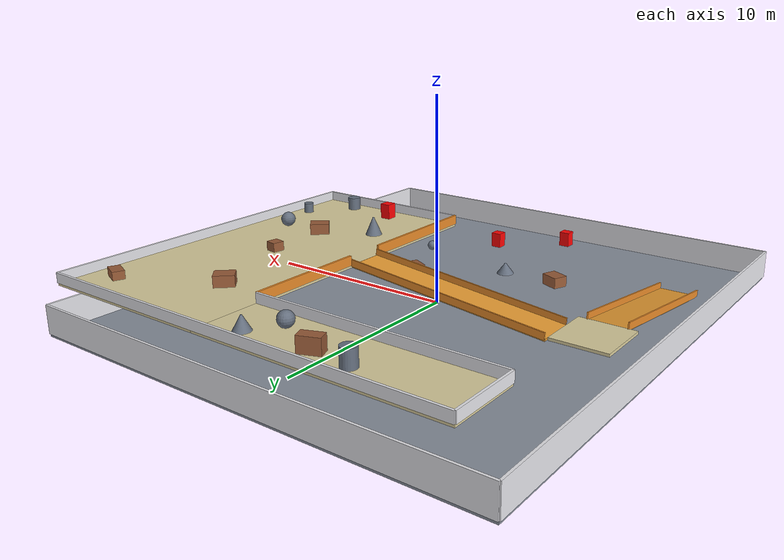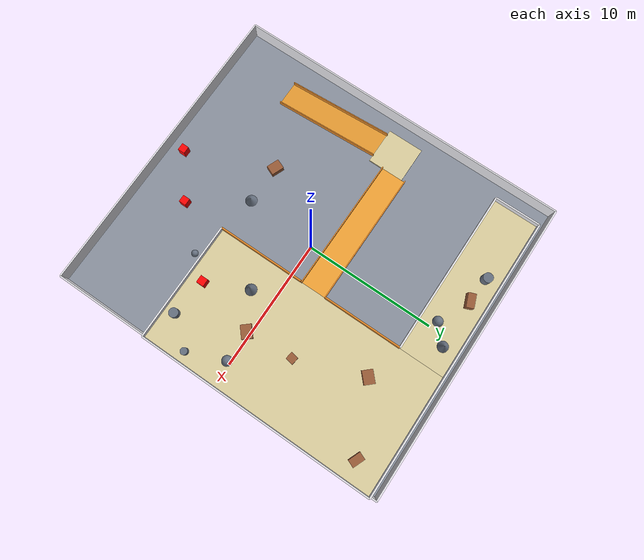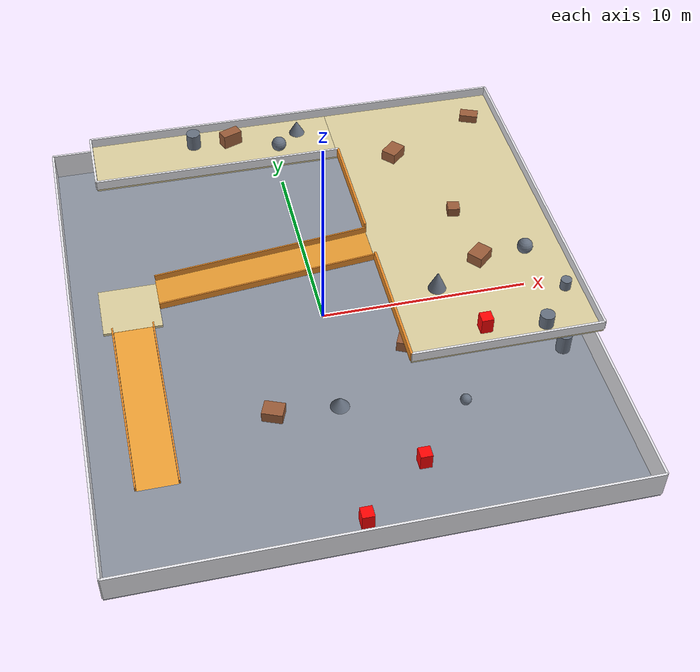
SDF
<sdf version="1.7">
 <world name="floor_3">
  <model name="floor_3_structure">
   <static>true</static>
   <link name="structure">
    <collision name="lower_collision">
     <pose>0 0 -0.0684210526 0 0 0</pose>
     <geometry><box><size>23.2631579 26 0.136842105</size></box></geometry>
     <max_contacts>40</max_contacts>
     <surface>
      <friction><ode><mu>2</mu><mu2>2</mu2></ode></friction>
      <contact><ode><kp>1e7</kp><kd>1000</kd><max_vel>0.1</max_vel><min_depth>0.001</min_depth></ode></contact>
     </surface>
    </collision>
    <visual name="lower_visual">
     <pose>0 0 -0.0684210526 0 0 0</pose>
     <geometry><box><size>23.2631579 26 0.136842105</size></box></geometry>
     <material><ambient>0.54 0.57 0.62 1</ambient><diffuse>0.54 0.57 0.62 1</diffuse></material>
    </visual>
    <collision name="landing_collision">
     <pose>-8.89473684 1.36842105 1.02631579 0 0 0</pose>
     <geometry><box><size>2.73684211 2.73684211 0.136842105</size></box></geometry>
     <max_contacts>40</max_contacts>
     <surface>
      <friction><ode><mu>2</mu><mu2>2</mu2></ode></friction>
      <contact><ode><kp>1e7</kp><kd>1000</kd><max_vel>0.1</max_vel><min_depth>0.001</min_depth></ode></contact>
     </surface>
    </collision>
    <visual name="landing_visual">
     <pose>-8.89473684 1.36842105 1.02631579 0 0 0</pose>
     <geometry><box><size>2.73684211 2.73684211 0.136842105</size></box></geometry>
     <material><ambient>0.86 0.81 0.62 1</ambient><diffuse>0.86 0.81 0.62 1</diffuse></material>
    </visual>
    <collision name="east_upper_collision">
     <pose>7.18421053 3.42105263 2.12105263 0 0 0</pose>
     <geometry><box><size>8.89473684 17.7894737 0.136842105</size></box></geometry>
     <max_contacts>40</max_contacts>
     <surface>
      <friction><ode><mu>2</mu><mu2>2</mu2></ode></friction>
      <contact><ode><kp>1e7</kp><kd>1000</kd><max_vel>0.1</max_vel><min_depth>0.001</min_depth></ode></contact>
     </surface>
    </collision>
    <visual name="east_upper_visual">
     <pose>7.18421053 3.42105263 2.12105263 0 0 0</pose>
     <geometry><box><size>8.89473684 17.7894737 0.136842105</size></box></geometry>
     <material><ambient>0.86 0.81 0.62 1</ambient><diffuse>0.86 0.81 0.62 1</diffuse></material>
    </visual>
    <collision name="north_upper_collision">
     <pose>-3.42105263 10.6052632 2.12105263 0 0 0</pose>
     <geometry><box><size>12.3157895 3.42105263 0.136842105</size></box></geometry>
     <max_contacts>40</max_contacts>
     <surface>
      <friction><ode><mu>2</mu><mu2>2</mu2></ode></friction>
      <contact><ode><kp>1e7</kp><kd>1000</kd><max_vel>0.1</max_vel><min_depth>0.001</min_depth></ode></contact>
     </surface>
    </collision>
    <visual name="north_upper_visual">
     <pose>-3.42105263 10.6052632 2.12105263 0 0 0</pose>
     <geometry><box><size>12.3157895 3.42105263 0.136842105</size></box></geometry>
     <material><ambient>0.86 0.81 0.62 1</ambient><diffuse>0.86 0.81 0.62 1</diffuse></material>
    </visual>
    <collision name="first_ramp_collision">
     <pose>-8.89473684 -4.08005258 0.486325235 0 -0.132007906 1.57079633</pose>
     <geometry><box><size>8.31709891 1.8 0.123157895</size></box></geometry>
     <max_contacts>40</max_contacts>
     <surface>
      <friction><ode><mu>2</mu><mu2>2</mu2></ode></friction>
      <contact><ode><kp>1e7</kp><kd>1000</kd><max_vel>0.1</max_vel><min_depth>0.001</min_depth></ode></contact>
     </surface>
    </collision>
    <visual name="first_ramp_visual">
     <pose>-8.89473684 -4.08005258 0.486325235 0 -0.132007906 1.57079633</pose>
     <geometry><box><size>8.31709891 1.8 0.123157895</size></box></geometry>
     <material><ambient>0.92 0.62 0.20 1</ambient><diffuse>0.92 0.62 0.20 1</diffuse></material>
    </visual>
    <collision name="first_ramp_rail_-1_collision">
     <pose>-7.95368421 -4.08005258 0.677904182 0 -0.132007906 1.57079633</pose>
     <geometry><box><size>8.31709891 0.0684210526 0.342105263</size></box></geometry>
     <max_contacts>40</max_contacts>
     <surface>
      <friction><ode><mu>2</mu><mu2>2</mu2></ode></friction>
      <contact><ode><kp>1e7</kp><kd>1000</kd><max_vel>0.1</max_vel><min_depth>0.001</min_depth></ode></contact>
     </surface>
    </collision>
    <visual name="first_ramp_rail_-1_visual">
     <pose>-7.95368421 -4.08005258 0.677904182 0 -0.132007906 1.57079633</pose>
     <geometry><box><size>8.31709891 0.0684210526 0.342105263</size></box></geometry>
     <material><ambient>0.92 0.55 0.16 1</ambient><diffuse>0.92 0.55 0.16 1</diffuse></material>
    </visual>
    <collision name="first_ramp_rail_1_collision">
     <pose>-9.83578947 -4.08005258 0.677904182 0 -0.132007906 1.57079633</pose>
     <geometry><box><size>8.31709891 0.0684210526 0.342105263</size></box></geometry>
     <max_contacts>40</max_contacts>
     <surface>
      <friction><ode><mu>2</mu><mu2>2</mu2></ode></friction>
      <contact><ode><kp>1e7</kp><kd>1000</kd><max_vel>0.1</max_vel><min_depth>0.001</min_depth></ode></contact>
     </surface>
    </collision>
    <visual name="first_ramp_rail_1_visual">
     <pose>-9.83578947 -4.08005258 0.677904182 0 -0.132007906 1.57079633</pose>
     <geometry><box><size>8.31709891 0.0684210526 0.342105263</size></box></geometry>
     <material><ambient>0.92 0.55 0.16 1</ambient><diffuse>0.92 0.55 0.16 1</diffuse></material>
    </visual>
    <collision name="second_ramp_collision">
     <pose>-2.37112167 2.05263158 1.58087139 0 -0.105914462 0</pose>
     <geometry><box><size>10.3553969 1.8 0.123157895</size></box></geometry>
     <max_contacts>40</max_contacts>
     <surface>
      <friction><ode><mu>2</mu><mu2>2</mu2></ode></friction>
      <contact><ode><kp>1e7</kp><kd>1000</kd><max_vel>0.1</max_vel><min_depth>0.001</min_depth></ode></contact>
     </surface>
    </collision>
    <visual name="second_ramp_visual">
     <pose>-2.37112167 2.05263158 1.58087139 0 -0.105914462 0</pose>
     <geometry><box><size>10.3553969 1.8 0.123157895</size></box></geometry>
     <material><ambient>0.92 0.62 0.20 1</ambient><diffuse>0.92 0.62 0.20 1</diffuse></material>
    </visual>
    <collision name="second_ramp_rail_-1_collision">
     <pose>-2.37112167 1.11157895 1.77245033 0 -0.105914462 0</pose>
     <geometry><box><size>10.3553969 0.0684210526 0.342105263</size></box></geometry>
     <max_contacts>40</max_contacts>
     <surface>
      <friction><ode><mu>2</mu><mu2>2</mu2></ode></friction>
      <contact><ode><kp>1e7</kp><kd>1000</kd><max_vel>0.1</max_vel><min_depth>0.001</min_depth></ode></contact>
     </surface>
    </collision>
    <visual name="second_ramp_rail_-1_visual">
     <pose>-2.37112167 1.11157895 1.77245033 0 -0.105914462 0</pose>
     <geometry><box><size>10.3553969 0.0684210526 0.342105263</size></box></geometry>
     <material><ambient>0.92 0.55 0.16 1</ambient><diffuse>0.92 0.55 0.16 1</diffuse></material>
    </visual>
    <collision name="second_ramp_rail_1_collision">
     <pose>-2.37112167 2.99368421 1.77245033 0 -0.105914462 0</pose>
     <geometry><box><size>10.3553969 0.0684210526 0.342105263</size></box></geometry>
     <max_contacts>40</max_contacts>
     <surface>
      <friction><ode><mu>2</mu><mu2>2</mu2></ode></friction>
      <contact><ode><kp>1e7</kp><kd>1000</kd><max_vel>0.1</max_vel><min_depth>0.001</min_depth></ode></contact>
     </surface>
    </collision>
    <visual name="second_ramp_rail_1_visual">
     <pose>-2.37112167 2.99368421 1.77245033 0 -0.105914462 0</pose>
     <geometry><box><size>10.3553969 0.0684210526 0.342105263</size></box></geometry>
     <material><ambient>0.92 0.55 0.16 1</ambient><diffuse>0.92 0.55 0.16 1</diffuse></material>
    </visual>
    <collision name="gallery_display_0_collision">
     <pose>-3.42105263 -5.47368421 0.273684211 0 0 -0.389327825</pose>
     <geometry><box><size>0.957894737 0.752631579 0.547368421</size></box></geometry>
     <max_contacts>40</max_contacts>
     <surface>
      <friction><ode><mu>2</mu><mu2>2</mu2></ode></friction>
      <contact><ode><kp>1e7</kp><kd>1000</kd><max_vel>0.1</max_vel><min_depth>0.001</min_depth></ode></contact>
     </surface>
    </collision>
    <visual name="gallery_display_0_visual">
     <pose>-3.42105263 -5.47368421 0.273684211 0 0 -0.389327825</pose>
     <geometry><box><size>0.957894737 0.752631579 0.547368421</size></box></geometry>
     <material><ambient>0.60 0.36 0.22 1</ambient><diffuse>0.60 0.36 0.22 1</diffuse></material>
    </visual>
    <collision name="gallery_display_1_collision">
     <pose>3.42105263 -2.73684211 0.273684211 0 0 -0.444158905</pose>
     <geometry><box><size>0.957894737 0.752631579 0.547368421</size></box></geometry>
     <max_contacts>40</max_contacts>
     <surface>
      <friction><ode><mu>2</mu><mu2>2</mu2></ode></friction>
      <contact><ode><kp>1e7</kp><kd>1000</kd><max_vel>0.1</max_vel><min_depth>0.001</min_depth></ode></contact>
     </surface>
    </collision>
    <visual name="gallery_display_1_visual">
     <pose>3.42105263 -2.73684211 0.273684211 0 0 -0.444158905</pose>
     <geometry><box><size>0.957894737 0.752631579 0.547368421</size></box></geometry>
     <material><ambient>0.60 0.36 0.22 1</ambient><diffuse>0.60 0.36 0.22 1</diffuse></material>
    </visual>
    <collision name="gallery_display_2_collision">
     <pose>7.52631579 0 2.46315789 0 0 0.714391628</pose>
     <geometry><box><size>0.957894737 0.752631579 0.547368421</size></box></geometry>
     <max_contacts>40</max_contacts>
     <surface>
      <friction><ode><mu>2</mu><mu2>2</mu2></ode></friction>
      <contact><ode><kp>1e7</kp><kd>1000</kd><max_vel>0.1</max_vel><min_depth>0.001</min_depth></ode></contact>
     </surface>
    </collision>
    <visual name="gallery_display_2_visual">
     <pose>7.52631579 0 2.46315789 0 0 0.714391628</pose>
     <geometry><box><size>0.957894737 0.752631579 0.547368421</size></box></geometry>
     <material><ambient>0.60 0.36 0.22 1</ambient><diffuse>0.60 0.36 0.22 1</diffuse></material>
    </visual>
    <collision name="gallery_display_3_collision">
     <pose>5.47368421 8.21052632 2.46315789 0 0 0.749595299</pose>
     <geometry><box><size>0.957894737 0.752631579 0.547368421</size></box></geometry>
     <max_contacts>40</max_contacts>
     <surface>
      <friction><ode><mu>2</mu><mu2>2</mu2></ode></friction>
      <contact><ode><kp>1e7</kp><kd>1000</kd><max_vel>0.1</max_vel><min_depth>0.001</min_depth></ode></contact>
     </surface>
    </collision>
    <visual name="gallery_display_3_visual">
     <pose>5.47368421 8.21052632 2.46315789 0 0 0.749595299</pose>
     <geometry><box><size>0.957894737 0.752631579 0.547368421</size></box></geometry>
     <material><ambient>0.60 0.36 0.22 1</ambient><diffuse>0.60 0.36 0.22 1</diffuse></material>
    </visual>
    <collision name="gallery_rail_0_collision">
     <pose>7.18421053 -5.47368421 2.42894737 0 0 0</pose>
     <geometry><box><size>8.89473684 0.109473684 0.478947368</size></box></geometry>
     <max_contacts>40</max_contacts>
     <surface>
      <friction><ode><mu>2</mu><mu2>2</mu2></ode></friction>
      <contact><ode><kp>1e7</kp><kd>1000</kd><max_vel>0.1</max_vel><min_depth>0.001</min_depth></ode></contact>
     </surface>
    </collision>
    <visual name="gallery_rail_0_visual">
     <pose>7.18421053 -5.47368421 2.42894737 0 0 0</pose>
     <geometry><box><size>8.89473684 0.109473684 0.478947368</size></box></geometry>
     <material><ambient>0.91 0.91 0.93 1</ambient><diffuse>0.91 0.91 0.93 1</diffuse></material>
    </visual>
    <collision name="gallery_rail_1_collision">
     <pose>11.6315789 3.42105263 2.42894737 0 0 1.57079633</pose>
     <geometry><box><size>17.7894737 0.109473684 0.478947368</size></box></geometry>
     <max_contacts>40</max_contacts>
     <surface>
      <friction><ode><mu>2</mu><mu2>2</mu2></ode></friction>
      <contact><ode><kp>1e7</kp><kd>1000</kd><max_vel>0.1</max_vel><min_depth>0.001</min_depth></ode></contact>
     </surface>
    </collision>
    <visual name="gallery_rail_1_visual">
     <pose>11.6315789 3.42105263 2.42894737 0 0 1.57079633</pose>
     <geometry><box><size>17.7894737 0.109473684 0.478947368</size></box></geometry>
     <material><ambient>0.91 0.91 0.93 1</ambient><diffuse>0.91 0.91 0.93 1</diffuse></material>
    </visual>
    <collision name="gallery_rail_2_collision">
     <pose>1.02631579 12.3157895 2.42894737 0 0 3.14159265</pose>
     <geometry><box><size>21.2105263 0.109473684 0.478947368</size></box></geometry>
     <max_contacts>40</max_contacts>
     <surface>
      <friction><ode><mu>2</mu><mu2>2</mu2></ode></friction>
      <contact><ode><kp>1e7</kp><kd>1000</kd><max_vel>0.1</max_vel><min_depth>0.001</min_depth></ode></contact>
     </surface>
    </collision>
    <visual name="gallery_rail_2_visual">
     <pose>1.02631579 12.3157895 2.42894737 0 0 3.14159265</pose>
     <geometry><box><size>21.2105263 0.109473684 0.478947368</size></box></geometry>
     <material><ambient>0.91 0.91 0.93 1</ambient><diffuse>0.91 0.91 0.93 1</diffuse></material>
    </visual>
    <collision name="gallery_rail_3_collision">
     <pose>-9.57894737 10.6052632 2.42894737 0 0 -1.57079633</pose>
     <geometry><box><size>3.42105263 0.109473684 0.478947368</size></box></geometry>
     <max_contacts>40</max_contacts>
     <surface>
      <friction><ode><mu>2</mu><mu2>2</mu2></ode></friction>
      <contact><ode><kp>1e7</kp><kd>1000</kd><max_vel>0.1</max_vel><min_depth>0.001</min_depth></ode></contact>
     </surface>
    </collision>
    <visual name="gallery_rail_3_visual">
     <pose>-9.57894737 10.6052632 2.42894737 0 0 -1.57079633</pose>
     <geometry><box><size>3.42105263 0.109473684 0.478947368</size></box></geometry>
     <material><ambient>0.91 0.91 0.93 1</ambient><diffuse>0.91 0.91 0.93 1</diffuse></material>
    </visual>
    <collision name="gallery_rail_4_collision">
     <pose>-3.42105263 8.89473684 2.42894737 0 0 0</pose>
     <geometry><box><size>12.3157895 0.109473684 0.478947368</size></box></geometry>
     <max_contacts>40</max_contacts>
     <surface>
      <friction><ode><mu>2</mu><mu2>2</mu2></ode></friction>
      <contact><ode><kp>1e7</kp><kd>1000</kd><max_vel>0.1</max_vel><min_depth>0.001</min_depth></ode></contact>
     </surface>
    </collision>
    <visual name="gallery_rail_4_visual">
     <pose>-3.42105263 8.89473684 2.42894737 0 0 0</pose>
     <geometry><box><size>12.3157895 0.109473684 0.478947368</size></box></geometry>
     <material><ambient>0.91 0.91 0.93 1</ambient><diffuse>0.91 0.91 0.93 1</diffuse></material>
    </visual>
    <collision name="gallery_west_lower_collision">
     <pose>2.73684211 -2.20657895 2.42894737 0 0 0</pose>
     <geometry><box><size>0.109473684 6.53421053 0.478947368</size></box></geometry>
     <max_contacts>40</max_contacts>
     <surface>
      <friction><ode><mu>2</mu><mu2>2</mu2></ode></friction>
      <contact><ode><kp>1e7</kp><kd>1000</kd><max_vel>0.1</max_vel><min_depth>0.001</min_depth></ode></contact>
     </surface>
    </collision>
    <visual name="gallery_west_lower_visual">
     <pose>2.73684211 -2.20657895 2.42894737 0 0 0</pose>
     <geometry><box><size>0.109473684 6.53421053 0.478947368</size></box></geometry>
     <material><ambient>0.92 0.55 0.16 1</ambient><diffuse>0.92 0.55 0.16 1</diffuse></material>
    </visual>
    <collision name="gallery_west_upper_collision">
     <pose>2.73684211 5.96973684 2.42894737 0 0 0</pose>
     <geometry><box><size>0.109473684 5.85 0.478947368</size></box></geometry>
     <max_contacts>40</max_contacts>
     <surface>
      <friction><ode><mu>2</mu><mu2>2</mu2></ode></friction>
      <contact><ode><kp>1e7</kp><kd>1000</kd><max_vel>0.1</max_vel><min_depth>0.001</min_depth></ode></contact>
     </surface>
    </collision>
    <visual name="gallery_west_upper_visual">
     <pose>2.73684211 5.96973684 2.42894737 0 0 0</pose>
     <geometry><box><size>0.109473684 5.85 0.478947368</size></box></geometry>
     <material><ambient>0.92 0.55 0.16 1</ambient><diffuse>0.92 0.55 0.16 1</diffuse></material>
    </visual>
    <collision name="boundary_0_collision">
     <pose>0 -13 0.684210526 0 0 0</pose>
     <geometry><box><size>23.2631579 0.109473684 1.36842105</size></box></geometry>
     <max_contacts>40</max_contacts>
     <surface>
      <friction><ode><mu>2</mu><mu2>2</mu2></ode></friction>
      <contact><ode><kp>1e7</kp><kd>1000</kd><max_vel>0.1</max_vel><min_depth>0.001</min_depth></ode></contact>
     </surface>
    </collision>
    <visual name="boundary_0_visual">
     <pose>0 -13 0.684210526 0 0 0</pose>
     <geometry><box><size>23.2631579 0.109473684 1.36842105</size></box></geometry>
     <material><ambient>0.91 0.91 0.93 1</ambient><diffuse>0.91 0.91 0.93 1</diffuse></material>
    </visual>
    <collision name="boundary_1_collision">
     <pose>11.6315789 0 0.684210526 0 0 1.57079633</pose>
     <geometry><box><size>26 0.109473684 1.36842105</size></box></geometry>
     <max_contacts>40</max_contacts>
     <surface>
      <friction><ode><mu>2</mu><mu2>2</mu2></ode></friction>
      <contact><ode><kp>1e7</kp><kd>1000</kd><max_vel>0.1</max_vel><min_depth>0.001</min_depth></ode></contact>
     </surface>
    </collision>
    <visual name="boundary_1_visual">
     <pose>11.6315789 0 0.684210526 0 0 1.57079633</pose>
     <geometry><box><size>26 0.109473684 1.36842105</size></box></geometry>
     <material><ambient>0.91 0.91 0.93 1</ambient><diffuse>0.91 0.91 0.93 1</diffuse></material>
    </visual>
    <collision name="boundary_2_collision">
     <pose>0 13 0.684210526 0 0 3.14159265</pose>
     <geometry><box><size>23.2631579 0.109473684 1.36842105</size></box></geometry>
     <max_contacts>40</max_contacts>
     <surface>
      <friction><ode><mu>2</mu><mu2>2</mu2></ode></friction>
      <contact><ode><kp>1e7</kp><kd>1000</kd><max_vel>0.1</max_vel><min_depth>0.001</min_depth></ode></contact>
     </surface>
    </collision>
    <visual name="boundary_2_visual">
     <pose>0 13 0.684210526 0 0 3.14159265</pose>
     <geometry><box><size>23.2631579 0.109473684 1.36842105</size></box></geometry>
     <material><ambient>0.91 0.91 0.93 1</ambient><diffuse>0.91 0.91 0.93 1</diffuse></material>
    </visual>
    <collision name="boundary_3_collision">
     <pose>-11.6315789 0 0.684210526 0 0 -1.57079633</pose>
     <geometry><box><size>26 0.109473684 1.36842105</size></box></geometry>
     <max_contacts>40</max_contacts>
     <surface>
      <friction><ode><mu>2</mu><mu2>2</mu2></ode></friction>
      <contact><ode><kp>1e7</kp><kd>1000</kd><max_vel>0.1</max_vel><min_depth>0.001</min_depth></ode></contact>
     </surface>
    </collision>
    <visual name="boundary_3_visual">
     <pose>-11.6315789 0 0.684210526 0 0 -1.57079633</pose>
     <geometry><box><size>26 0.109473684 1.36842105</size></box></geometry>
     <material><ambient>0.91 0.91 0.93 1</ambient><diffuse>0.91 0.91 0.93 1</diffuse></material>
    </visual>
    <collision name="irregular_prop_0_collision">
     <pose>10.159848 10.3847573 2.39398104 0 0 2.74863127</pose>
     <geometry><box><size>0.918889875 0.555558684 0.409014721</size></box></geometry>
     <max_contacts>40</max_contacts>
     <surface>
      <friction><ode><mu>2</mu><mu2>2</mu2></ode></friction>
      <contact><ode><kp>1e7</kp><kd>1000</kd><max_vel>0.1</max_vel><min_depth>0.001</min_depth></ode></contact>
     </surface>
    </collision>
    <visual name="irregular_prop_0_visual">
     <pose>10.159848 10.3847573 2.39398104 0 0 2.74863127</pose>
     <geometry><box><size>0.918889875 0.555558684 0.409014721</size></box></geometry>
     <material><ambient>0.60 0.36 0.22 1</ambient><diffuse>0.60 0.36 0.22 1</diffuse></material>
    </visual>
    <collision name="irregular_prop_1_collision">
     <pose>-4.3694605 11.2306676 2.61053678 0 0 -0.125006447</pose>
     <geometry>
      <cylinder><radius>0.34992231591525336</radius><length>0.8421261951547745</length></cylinder>
     </geometry>
     <max_contacts>40</max_contacts>
     <surface>
      <friction><ode><mu>2</mu><mu2>2</mu2></ode></friction>
      <contact><ode><kp>1e7</kp><kd>1000</kd><max_vel>0.1</max_vel><min_depth>0.001</min_depth></ode></contact>
     </surface>
    </collision>
    <visual name="irregular_prop_1_visual">
     <pose>-4.3694605 11.2306676 2.61053678 0 0 -0.125006447</pose>
     <geometry>
      <cylinder><radius>0.34992231591525336</radius><length>0.8421261951547745</length></cylinder>
     </geometry>
     <material><ambient>0.40 0.44 0.50 1</ambient><diffuse>0.40 0.44 0.50 1</diffuse></material>
    </visual>
    <collision name="irregular_prop_2_collision">
     <pose>5.0537185 -6.56818211 0.258190551 0 0 -2.21827671</pose>
     <geometry><sphere><radius>0.25819055129671353</radius></sphere></geometry>
     <max_contacts>40</max_contacts>
     <surface>
      <friction><ode><mu>2</mu><mu2>2</mu2></ode></friction>
      <contact><ode><kp>1e7</kp><kd>1000</kd><max_vel>0.1</max_vel><min_depth>0.001</min_depth></ode></contact>
     </surface>
    </collision>
    <visual name="irregular_prop_2_visual">
     <pose>5.0537185 -6.56818211 0.258190551 0 0 -2.21827671</pose>
     <geometry><sphere><radius>0.25819055129671353</radius></sphere></geometry>
     <material><ambient>0.40 0.44 0.50 1</ambient><diffuse>0.40 0.44 0.50 1</diffuse></material>
    </visual>
    <collision name="irregular_prop_3_collision">
     <geometry><mesh><uri>3DModel/floor/surfaces/floor_3_irregular_prop_3.stl</uri></mesh></geometry>
     <max_contacts>40</max_contacts>
     <surface>
      <friction><ode><mu>8</mu><mu2>8</mu2></ode></friction>
      <contact><ode><kp>1e7</kp><kd>1000</kd><max_vel>0.1</max_vel><min_depth>0.001</min_depth></ode></contact>
     </surface>
    </collision>
    <visual name="irregular_prop_3_visual">
     <geometry><mesh><uri>3DModel/floor/surfaces/floor_3_irregular_prop_3.stl</uri></mesh></geometry>
     <material><ambient>0.40 0.44 0.50 1</ambient><diffuse>0.40 0.44 0.50 1</diffuse></material>
    </visual>
    <collision name="irregular_prop_4_collision">
     <pose>7.38821342 -2.03933875 0.207965514 0 0 -1.30282516</pose>
     <geometry><box><size>0.98556991 0.427902317 0.415931028</size></box></geometry>
     <max_contacts>40</max_contacts>
     <surface>
      <friction><ode><mu>2</mu><mu2>2</mu2></ode></friction>
      <contact><ode><kp>1e7</kp><kd>1000</kd><max_vel>0.1</max_vel><min_depth>0.001</min_depth></ode></contact>
     </surface>
    </collision>
    <visual name="irregular_prop_4_visual">
     <pose>7.38821342 -2.03933875 0.207965514 0 0 -1.30282516</pose>
     <geometry><box><size>0.98556991 0.427902317 0.415931028</size></box></geometry>
     <material><ambient>0.60 0.36 0.22 1</ambient><diffuse>0.60 0.36 0.22 1</diffuse></material>
    </visual>
    <collision name="irregular_prop_5_collision">
     <pose>9.21188465 -4.66258469 2.52017539 0 0 -0.399935903</pose>
     <geometry>
      <cylinder><radius>0.33438679481077016</radius><length>0.6614034087610907</length></cylinder>
     </geometry>
     <max_contacts>40</max_contacts>
     <surface>
      <friction><ode><mu>2</mu><mu2>2</mu2></ode></friction>
      <contact><ode><kp>1e7</kp><kd>1000</kd><max_vel>0.1</max_vel><min_depth>0.001</min_depth></ode></contact>
     </surface>
    </collision>
    <visual name="irregular_prop_5_visual">
     <pose>9.21188465 -4.66258469 2.52017539 0 0 -0.399935903</pose>
     <geometry>
      <cylinder><radius>0.33438679481077016</radius><length>0.6614034087610907</length></cylinder>
     </geometry>
     <material><ambient>0.40 0.44 0.50 1</ambient><diffuse>0.40 0.44 0.50 1</diffuse></material>
    </visual>
    <collision name="irregular_prop_6_collision">
     <pose>10.3061692 1.67391629 0.329240256 0 0 1.63248356</pose>
     <geometry><sphere><radius>0.3292402558355496</radius></sphere></geometry>
     <max_contacts>40</max_contacts>
     <surface>
      <friction><ode><mu>2</mu><mu2>2</mu2></ode></friction>
      <contact><ode><kp>1e7</kp><kd>1000</kd><max_vel>0.1</max_vel><min_depth>0.001</min_depth></ode></contact>
     </surface>
    </collision>
    <visual name="irregular_prop_6_visual">
     <pose>10.3061692 1.67391629 0.329240256 0 0 1.63248356</pose>
     <geometry><sphere><radius>0.3292402558355496</radius></sphere></geometry>
     <material><ambient>0.40 0.44 0.50 1</ambient><diffuse>0.40 0.44 0.50 1</diffuse></material>
    </visual>
    <collision name="irregular_prop_7_collision">
     <geometry><mesh><uri>3DModel/floor/surfaces/floor_3_irregular_prop_7.stl</uri></mesh></geometry>
     <max_contacts>40</max_contacts>
     <surface>
      <friction><ode><mu>8</mu><mu2>8</mu2></ode></friction>
      <contact><ode><kp>1e7</kp><kd>1000</kd><max_vel>0.1</max_vel><min_depth>0.001</min_depth></ode></contact>
     </surface>
    </collision>
    <visual name="irregular_prop_7_visual">
     <geometry><mesh><uri>3DModel/floor/surfaces/floor_3_irregular_prop_7.stl</uri></mesh></geometry>
     <material><ambient>0.40 0.44 0.50 1</ambient><diffuse>0.40 0.44 0.50 1</diffuse></material>
    </visual>
    <collision name="irregular_prop_8_collision">
     <pose>-2.463284 11.1016275 2.55475676 0 0 -2.77745998</pose>
     <geometry><box><size>1.01273751 0.55130661 0.730566154</size></box></geometry>
     <max_contacts>40</max_contacts>
     <surface>
      <friction><ode><mu>2</mu><mu2>2</mu2></ode></friction>
      <contact><ode><kp>1e7</kp><kd>1000</kd><max_vel>0.1</max_vel><min_depth>0.001</min_depth></ode></contact>
     </surface>
    </collision>
    <visual name="irregular_prop_8_visual">
     <pose>-2.463284 11.1016275 2.55475676 0 0 -2.77745998</pose>
     <geometry><box><size>1.01273751 0.55130661 0.730566154</size></box></geometry>
     <material><ambient>0.60 0.36 0.22 1</ambient><diffuse>0.60 0.36 0.22 1</diffuse></material>
    </visual>
    <collision name="irregular_prop_9_collision">
     <pose>10.3949605 -4.40652474 0.497125591 0 0 -0.635704956</pose>
     <geometry>
      <cylinder><radius>0.3367533754185129</radius><length>0.9942511828033207</length></cylinder>
     </geometry>
     <max_contacts>40</max_contacts>
     <surface>
      <friction><ode><mu>2</mu><mu2>2</mu2></ode></friction>
      <contact><ode><kp>1e7</kp><kd>1000</kd><max_vel>0.1</max_vel><min_depth>0.001</min_depth></ode></contact>
     </surface>
    </collision>
    <visual name="irregular_prop_9_visual">
     <pose>10.3949605 -4.40652474 0.497125591 0 0 -0.635704956</pose>
     <geometry>
      <cylinder><radius>0.3367533754185129</radius><length>0.9942511828033207</length></cylinder>
     </geometry>
     <material><ambient>0.40 0.44 0.50 1</ambient><diffuse>0.40 0.44 0.50 1</diffuse></material>
    </visual>
    <collision name="irregular_prop_10_collision">
     <pose>9.77365683 0.0474763284 2.56424502 0 0 -0.437084836</pose>
     <geometry><sphere><radius>0.374771336675363</radius></sphere></geometry>
     <max_contacts>40</max_contacts>
     <surface>
      <friction><ode><mu>2</mu><mu2>2</mu2></ode></friction>
      <contact><ode><kp>1e7</kp><kd>1000</kd><max_vel>0.1</max_vel><min_depth>0.001</min_depth></ode></contact>
     </surface>
    </collision>
    <visual name="irregular_prop_10_visual">
     <pose>9.77365683 0.0474763284 2.56424502 0 0 -0.437084836</pose>
     <geometry><sphere><radius>0.374771336675363</radius></sphere></geometry>
     <material><ambient>0.40 0.44 0.50 1</ambient><diffuse>0.40 0.44 0.50 1</diffuse></material>
    </visual>
    <collision name="irregular_prop_11_collision">
     <geometry><mesh><uri>3DModel/floor/surfaces/floor_3_irregular_prop_11.stl</uri></mesh></geometry>
     <max_contacts>40</max_contacts>
     <surface>
      <friction><ode><mu>8</mu><mu2>8</mu2></ode></friction>
      <contact><ode><kp>1e7</kp><kd>1000</kd><max_vel>0.1</max_vel><min_depth>0.001</min_depth></ode></contact>
     </surface>
    </collision>
    <visual name="irregular_prop_11_visual">
     <geometry><mesh><uri>3DModel/floor/surfaces/floor_3_irregular_prop_11.stl</uri></mesh></geometry>
     <material><ambient>0.40 0.44 0.50 1</ambient><diffuse>0.40 0.44 0.50 1</diffuse></material>
    </visual>
    <collision name="irregular_prop_12_collision">
     <pose>7.26177754 3.44980638 2.41519507 0 0 -0.169192919</pose>
     <geometry><box><size>0.579867751 0.57880184 0.451442776</size></box></geometry>
     <max_contacts>40</max_contacts>
     <surface>
      <friction><ode><mu>2</mu><mu2>2</mu2></ode></friction>
      <contact><ode><kp>1e7</kp><kd>1000</kd><max_vel>0.1</max_vel><min_depth>0.001</min_depth></ode></contact>
     </surface>
    </collision>
    <visual name="irregular_prop_12_visual">
     <pose>7.26177754 3.44980638 2.41519507 0 0 -0.169192919</pose>
     <geometry><box><size>0.579867751 0.57880184 0.451442776</size></box></geometry>
     <material><ambient>0.60 0.36 0.22 1</ambient><diffuse>0.60 0.36 0.22 1</diffuse></material>
    </visual>
    <collision name="irregular_prop_13_collision">
     <pose>10.8466287 -2.63172002 2.44659034 0 0 -1.75583558</pose>
     <geometry>
      <cylinder><radius>0.2542912317373414</radius><length>0.5142333179260323</length></cylinder>
     </geometry>
     <max_contacts>40</max_contacts>
     <surface>
      <friction><ode><mu>2</mu><mu2>2</mu2></ode></friction>
      <contact><ode><kp>1e7</kp><kd>1000</kd><max_vel>0.1</max_vel><min_depth>0.001</min_depth></ode></contact>
     </surface>
    </collision>
    <visual name="irregular_prop_13_visual">
     <pose>10.8466287 -2.63172002 2.44659034 0 0 -1.75583558</pose>
     <geometry>
      <cylinder><radius>0.2542912317373414</radius><length>0.5142333179260323</length></cylinder>
     </geometry>
     <material><ambient>0.40 0.44 0.50 1</ambient><diffuse>0.40 0.44 0.50 1</diffuse></material>
    </visual>
    <collision name="irregular_prop_14_collision">
     <pose>-0.118200074 10.0381748 2.55965864 0 0 3.09931701</pose>
     <geometry><sphere><radius>0.3701849519164002</radius></sphere></geometry>
     <max_contacts>40</max_contacts>
     <surface>
      <friction><ode><mu>2</mu><mu2>2</mu2></ode></friction>
      <contact><ode><kp>1e7</kp><kd>1000</kd><max_vel>0.1</max_vel><min_depth>0.001</min_depth></ode></contact>
     </surface>
    </collision>
    <visual name="irregular_prop_14_visual">
     <pose>-0.118200074 10.0381748 2.55965864 0 0 3.09931701</pose>
     <geometry><sphere><radius>0.3701849519164002</radius></sphere></geometry>
     <material><ambient>0.40 0.44 0.50 1</ambient><diffuse>0.40 0.44 0.50 1</diffuse></material>
    </visual>
   </link>
  </model>
  <model name="moving_obstacle_1">
   <static>true</static>
   <pose>-0.748322399 -11.8025107 0.4 0 0 0</pose>
   <link name="obstacle">
    <collision name="body_collision">
     <geometry><box><size>0.55 0.55 0.8</size></box></geometry>
     <max_contacts>40</max_contacts>
     <surface>
      <friction><ode><mu>2</mu><mu2>2</mu2></ode></friction>
      <contact><ode><kp>1e7</kp><kd>1000</kd><max_vel>0.1</max_vel><min_depth>0.001</min_depth></ode></contact>
     </surface>
    </collision>
    <visual name="body_visual">
     <geometry><box><size>0.55 0.55 0.8</size></box></geometry>
     <material>
      <ambient>1 0.015 0.015 1</ambient>
      <diffuse>1 0.015 0.015 1</diffuse>
      <emissive>0.25 0 0 1</emissive>
     </material>
    </visual>
   </link>
   <plugin name="path_motion" filename="libmultimap_obstacle_motion.so">
    <speed>0.25</speed>
    <start_delay>0.0</start_delay>
    <waypoints>
     <point>-0.748322399 -11.8025107 0.4</point>
     <point>-0.816171232 -11.6778066 0.4</point>
     <point>-0.884020066 -11.5531026 0.4</point>
     <point>-0.951868899 -11.4283985 0.4</point>
     <point>-1.01971773 -11.3036945 0.4</point>
     <point>-1.08756657 -11.1789904 0.4</point>
     <point>-1.1554154 -11.0542864 0.4</point>
     <point>-1.22326423 -10.9295823 0.4</point>
     <point>-1.29111307 -10.8048782 0.4</point>
     <point>-1.3589619 -10.6801742 0.4</point>
     <point>-1.42681073 -10.5554701 0.4</point>
     <point>-1.49465957 -10.4307661 0.4</point>
     <point>-1.5625084 -10.306062 0.4</point>
     <point>-1.63035723 -10.181358 0.4</point>
     <point>-1.69820607 -10.0566539 0.4</point>
     <point>-1.7660549 -9.93194984 0.4</point>
     <point>-1.83390373 -9.80724578 0.4</point>
     <point>-1.90175257 -9.68254172 0.4</point>
     <point>-1.9696014 -9.55783767 0.4</point>
     <point>-2.03745023 -9.43313361 0.4</point>
     <point>-2.10529907 -9.30842955 0.4</point>
     <point>-2.1731479 -9.1837255 0.4</point>
     <point>-2.24099674 -9.05902144 0.4</point>
     <point>-2.30884557 -8.93431738 0.4</point>
     <point>-2.3766944 -8.80961333 0.4</point>
     <point>-2.44454324 -8.68490927 0.4</point>
     <point>-2.51239207 -8.56020521 0.4</point>
     <point>-2.5802409 -8.43550116 0.4</point>
     <point>-2.64808974 -8.3107971 0.4</point>
     <point>-2.71593857 -8.18609304 0.4</point>
     <point>-2.7837874 -8.06138898 0.4</point>
     <point>-2.85163624 -7.93668493 0.4</point>
     <point>-2.91948507 -7.81198087 0.4</point>
     <point>-2.9873339 -7.68727681 0.4</point>
     <point>-3.05518274 -7.56257276 0.4</point>
     <point>-3.12303157 -7.4378687 0.4</point>
     <point>-3.1908804 -7.31316464 0.4</point>
     <point>-3.25872924 -7.18846059 0.4</point>
     <point>-3.32657807 -7.06375653 0.4</point>
     <point>-3.3944269 -6.93905247 0.4</point>
    </waypoints>
   </plugin>
  </model>
  <model name="moving_obstacle_3">
   <static>true</static>
   <pose>2.37242635 -9.37504587 0.4 0 0 0</pose>
   <link name="obstacle">
    <collision name="body_collision">
     <geometry><box><size>0.55 0.55 0.8</size></box></geometry>
     <max_contacts>40</max_contacts>
     <surface>
      <friction><ode><mu>2</mu><mu2>2</mu2></ode></friction>
      <contact><ode><kp>1e7</kp><kd>1000</kd><max_vel>0.1</max_vel><min_depth>0.001</min_depth></ode></contact>
     </surface>
    </collision>
    <visual name="body_visual">
     <geometry><box><size>0.55 0.55 0.8</size></box></geometry>
     <material>
      <ambient>1 0.015 0.015 1</ambient>
      <diffuse>1 0.015 0.015 1</diffuse>
      <emissive>0.25 0 0 1</emissive>
     </material>
    </visual>
   </link>
   <plugin name="path_motion" filename="libmultimap_obstacle_motion.so">
    <speed>0.4</speed>
    <start_delay>0.5</start_delay>
    <waypoints>
     <point>2.37242635 -9.37504587 0.4</point>
     <point>2.51140237 -9.37425306 0.4</point>
     <point>2.6503784 -9.37346024 0.4</point>
     <point>2.78935442 -9.37266743 0.4</point>
     <point>2.92833045 -9.37187461 0.4</point>
     <point>3.06730647 -9.37108179 0.4</point>
     <point>3.20628249 -9.37028898 0.4</point>
     <point>3.34525852 -9.36949616 0.4</point>
     <point>3.48423454 -9.36870334 0.4</point>
     <point>3.62321057 -9.36791053 0.4</point>
     <point>3.76218659 -9.36711771 0.4</point>
     <point>3.90116262 -9.3663249 0.4</point>
     <point>4.04013864 -9.36553208 0.4</point>
     <point>4.17911466 -9.36473926 0.4</point>
     <point>4.31809069 -9.36394645 0.4</point>
     <point>4.45706671 -9.36315363 0.4</point>
     <point>4.59604274 -9.36236081 0.4</point>
     <point>4.73501876 -9.361568 0.4</point>
     <point>4.87399479 -9.36077518 0.4</point>
     <point>5.01297081 -9.35998237 0.4</point>
     <point>5.15194683 -9.35918955 0.4</point>
     <point>5.29092286 -9.35839673 0.4</point>
     <point>5.42989888 -9.35760392 0.4</point>
     <point>5.56887491 -9.3568111 0.4</point>
     <point>5.70785093 -9.35601828 0.4</point>
     <point>5.84682696 -9.35522547 0.4</point>
     <point>5.98580298 -9.35443265 0.4</point>
     <point>6.124779 -9.35363984 0.4</point>
     <point>6.26375503 -9.35284702 0.4</point>
     <point>6.40273105 -9.3520542 0.4</point>
     <point>6.54170708 -9.35126139 0.4</point>
     <point>6.6806831 -9.35046857 0.4</point>
     <point>6.81965913 -9.34967575 0.4</point>
     <point>6.95863515 -9.34888294 0.4</point>
     <point>7.09761117 -9.34809012 0.4</point>
     <point>7.2365872 -9.34729731 0.4</point>
     <point>7.37556322 -9.34650449 0.4</point>
     <point>7.51453925 -9.34571167 0.4</point>
     <point>7.65351527 -9.34491886 0.4</point>
     <point>7.7924913 -9.34412604 0.4</point>
    </waypoints>
   </plugin>
  </model>
  <model name="moving_obstacle_5">
   <static>true</static>
   <pose>6.45542266 -4.32638517 2.58947368 0 0 0</pose>
   <link name="obstacle">
    <collision name="body_collision">
     <geometry><box><size>0.55 0.55 0.8</size></box></geometry>
     <max_contacts>40</max_contacts>
     <surface>
      <friction><ode><mu>2</mu><mu2>2</mu2></ode></friction>
      <contact><ode><kp>1e7</kp><kd>1000</kd><max_vel>0.1</max_vel><min_depth>0.001</min_depth></ode></contact>
     </surface>
    </collision>
    <visual name="body_visual">
     <geometry><box><size>0.55 0.55 0.8</size></box></geometry>
     <material>
      <ambient>1 0.015 0.015 1</ambient>
      <diffuse>1 0.015 0.015 1</diffuse>
      <emissive>0.25 0 0 1</emissive>
     </material>
    </visual>
   </link>
   <plugin name="path_motion" filename="libmultimap_obstacle_motion.so">
    <speed>0.3</speed>
    <start_delay>0.0</start_delay>
    <waypoints>
     <point>6.45542266 -4.32638517 2.58947368</point>
     <point>6.51361537 -4.22675992 2.58947368</point>
     <point>6.57180808 -4.12713468 2.58947368</point>
     <point>6.63000079 -4.02750943 2.58947368</point>
     <point>6.68819349 -3.92788419 2.58947368</point>
     <point>6.7463862 -3.82825895 2.58947368</point>
     <point>6.80457891 -3.7286337 2.58947368</point>
     <point>6.86277162 -3.62900846 2.58947368</point>
     <point>6.92096433 -3.52938321 2.58947368</point>
     <point>6.97915704 -3.42975797 2.58947368</point>
     <point>7.03734975 -3.33013272 2.58947368</point>
     <point>7.09554245 -3.23050748 2.58947368</point>
     <point>7.15373516 -3.13088223 2.58947368</point>
     <point>7.21192787 -3.03125699 2.58947368</point>
     <point>7.27012058 -2.93163174 2.58947368</point>
     <point>7.32831329 -2.8320065 2.58947368</point>
     <point>7.386506 -2.73238125 2.58947368</point>
     <point>7.44469871 -2.63275601 2.58947368</point>
     <point>7.50289142 -2.53313076 2.58947368</point>
     <point>7.56108412 -2.43350552 2.58947368</point>
     <point>7.61927683 -2.33388027 2.58947368</point>
     <point>7.67746954 -2.23425503 2.58947368</point>
     <point>7.73566225 -2.13462978 2.58947368</point>
     <point>7.79385496 -2.03500454 2.58947368</point>
     <point>7.85204767 -1.9353793 2.58947368</point>
     <point>7.91024038 -1.83575405 2.58947368</point>
     <point>7.96843308 -1.73612881 2.58947368</point>
     <point>8.02662579 -1.63650356 2.58947368</point>
     <point>8.0848185 -1.53687832 2.58947368</point>
     <point>8.14301121 -1.43725307 2.58947368</point>
     <point>8.20120392 -1.33762783 2.58947368</point>
     <point>8.25939663 -1.23800258 2.58947368</point>
     <point>8.31758934 -1.13837734 2.58947368</point>
     <point>8.37578205 -1.03875209 2.58947368</point>
     <point>8.43397475 -0.939126848 2.58947368</point>
     <point>8.49216746 -0.839501603 2.58947368</point>
     <point>8.55036017 -0.739876358 2.58947368</point>
     <point>8.60855288 -0.640251114 2.58947368</point>
     <point>8.66674559 -0.540625869 2.58947368</point>
     <point>8.7249383 -0.441000624 2.58947368</point>
    </waypoints>
   </plugin>
  </model>
 </world>
</sdf>
